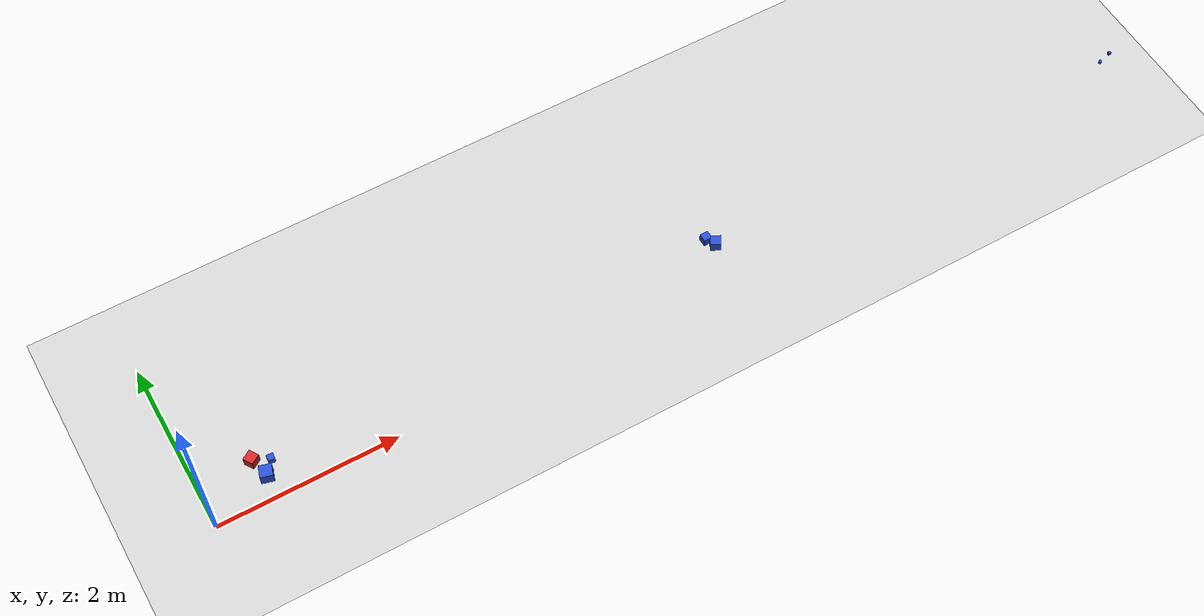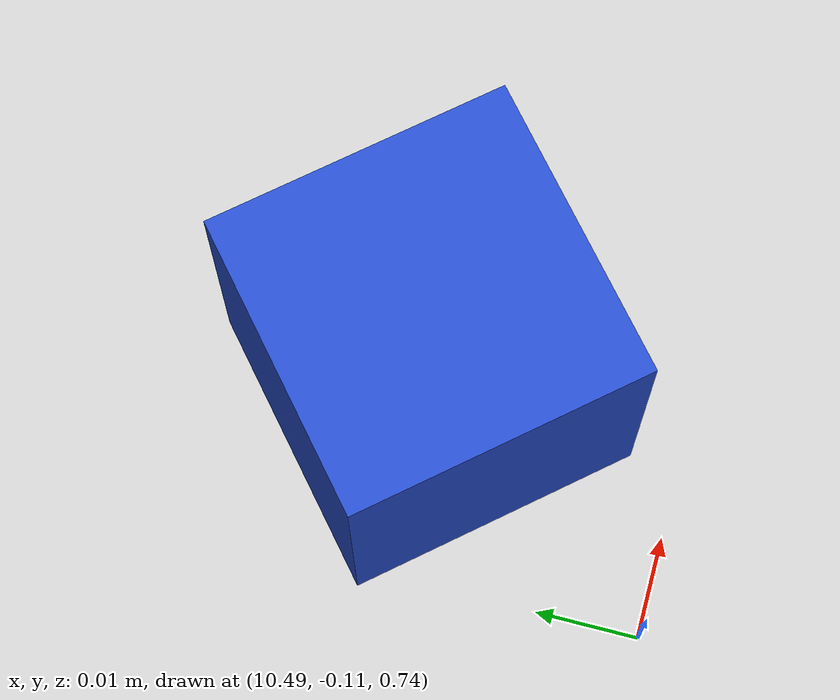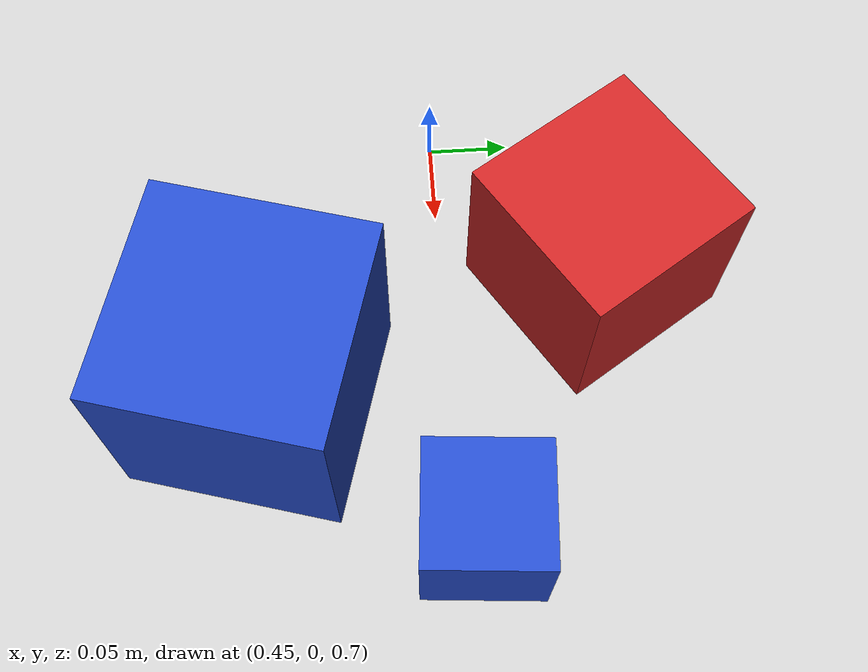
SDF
<sdf version="1.4">
 <world name="simple">
  <include><uri>model://ground_plane</uri></include>
  <include><uri>model://sun</uri></include>
  <include>
   <uri>model://red_cube11cm</uri>
   <name>block11</name>
   <pose>0.549441955169 0.0932563801525 0.75 0 0 -1.00279896272</pose>
  </include>
  <include>
   <uri>model://blue_cube13cm</uri>
   <name>block12</name>
   <pose>0.611181189757 -0.113820983791 0.75 0 0 2.85681969411</pose>
  </include>
  <include>
   <uri>model://blue_cube7cm</uri>
   <name>block14</name>
   <pose>0.714691488572 0.0106640996119 0.75 0 0 -0.0842057879604</pose>
  </include>
  <include>
   <uri>model://blue_cube9cm</uri>
   <name>block22</name>
   <pose>5.61388570679 0.0882168135634 0.75 0 0 -3.12034274693</pose>
  </include>
  <include>
   <uri>model://blue_cube11cm</uri>
   <name>block24</name>
   <pose>5.67076882126 -0.00669108082273 0.75 0 0 2.65890826572</pose>
  </include>
  <include>
   <uri>model://blue_cube3cm</uri>
   <name>block32</name>
   <pose>10.669106014 -0.0375210603285 0.75 0 0 -0.0270952688722</pose>
  </include>
  <include>
   <uri>model://blue_cube3cm</uri>
   <name>block34</name>
   <pose>10.5102902402 -0.084157720516 0.75 0 0 -0.863466240861</pose>
  </include>
 </world>
</sdf>

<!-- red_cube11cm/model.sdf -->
<sdf version='1.4'>
  <model name="red_cube11cm">
      <static>0</static>
      <link name='link'>
        <inertial>
          <mass>0.3</mass>
          <inertia>
            <ixx>0.001</ixx>
            <ixy>0.000000</ixy>
            <ixz>0.000000</ixz>
            <iyy>0.001</iyy>
            <iyz>0.000000</iyz>
            <izz>0.001</izz>
          </inertia>
        </inertial>
        <collision name='collision'>
          <geometry>
            <box>
              <size>0.110 0.110 0.110</size>
            </box>
          </geometry>
          <surface>
            <friction>
              <ode>
                <mu>5.0</mu>
                <mu2>5.0</mu2>
              </ode>
            </friction>
            <contact>
              <ode>
                <kp>1000000.0</kp>
                <kd>100.0</kd>
                <max_vel>1.0</max_vel>
                <min_depth>0.002</min_depth>
              </ode>
            </contact>
          </surface>
        </collision>
        <visual name='visual'>
          <geometry>
            <box>
              <size>0.110 0.110 0.110</size>
            </box>
          </geometry>
          <material>
            <script>
              <uri>file://media/materials/scripts/gazebo.material</uri>
              <name>Gazebo/Red</name>
            </script>
          </material>
        </visual>
        <velocity_decay>
          <linear>0.000000</linear>
          <angular>0.000000</angular>
        </velocity_decay>
        <self_collide>0</self_collide>
        <kinematic>0</kinematic>
        <gravity>1</gravity>
      </link>
  </model>
</sdf>

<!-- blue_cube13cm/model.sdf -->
<sdf version='1.4'>
  <model name="blue_cube13cm">
      <static>0</static>
      <link name='link'>
        <inertial>
          <mass>0.3</mass>
          <inertia>
            <ixx>0.001</ixx>
            <ixy>0.000000</ixy>
            <ixz>0.000000</ixz>
            <iyy>0.001</iyy>
            <iyz>0.000000</iyz>
            <izz>0.001</izz>
          </inertia>
        </inertial>
        <collision name='collision'>
          <geometry>
            <box>
              <size>0.130 0.130 0.130</size>
            </box>
          </geometry>
          <surface>
            <friction>
              <ode>
                <mu>5.0</mu>
                <mu2>5.0</mu2>
              </ode>
            </friction>
            <contact>
              <ode>
                <kp>1000000.0</kp>
                <kd>100.0</kd>
                <max_vel>1.0</max_vel>
                <min_depth>0.002</min_depth>
              </ode>
            </contact>
          </surface>
        </collision>
        <visual name='visual'>
          <geometry>
            <box>
              <size>0.130 0.130 0.130</size>
            </box>
          </geometry>
          <material>
            <script>
              <uri>file://media/materials/scripts/gazebo.material</uri>
              <name>Gazebo/Blue</name>
            </script>
          </material>
        </visual>
        <velocity_decay>
          <linear>0.000000</linear>
          <angular>0.000000</angular>
        </velocity_decay>
        <self_collide>0</self_collide>
        <kinematic>0</kinematic>
        <gravity>1</gravity>
      </link>
  </model>
</sdf>

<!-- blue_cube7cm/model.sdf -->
<sdf version='1.4'>
  <model name="blue_cube7cm">
      <static>0</static>
      <link name='link'>
        <inertial>
          <mass>0.3</mass>
          <inertia>
            <ixx>0.001</ixx>
            <ixy>0.000000</ixy>
            <ixz>0.000000</ixz>
            <iyy>0.001</iyy>
            <iyz>0.000000</iyz>
            <izz>0.001</izz>
          </inertia>
        </inertial>
        <collision name='collision'>
          <geometry>
            <box>
              <size>0.070 0.070 0.070</size>
            </box>
          </geometry>
          <surface>
            <friction>
              <ode>
                <mu>5.0</mu>
                <mu2>5.0</mu2>
              </ode>
            </friction>
            <contact>
              <ode>
                <kp>1000000.0</kp>
                <kd>100.0</kd>
                <max_vel>1.0</max_vel>
                <min_depth>0.002</min_depth>
              </ode>
            </contact>
          </surface>
        </collision>
        <visual name='visual'>
          <geometry>
            <box>
              <size>0.070 0.070 0.070</size>
            </box>
          </geometry>
          <material>
            <script>
              <uri>file://media/materials/scripts/gazebo.material</uri>
              <name>Gazebo/Blue</name>
            </script>
          </material>
        </visual>
        <velocity_decay>
          <linear>0.000000</linear>
          <angular>0.000000</angular>
        </velocity_decay>
        <self_collide>0</self_collide>
        <kinematic>0</kinematic>
        <gravity>1</gravity>
      </link>
  </model>
</sdf>

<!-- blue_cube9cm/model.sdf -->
<sdf version='1.4'>
  <model name="blue_cube9cm">
      <static>0</static>
      <link name='link'>
        <inertial>
          <mass>0.3</mass>
          <inertia>
            <ixx>0.001</ixx>
            <ixy>0.000000</ixy>
            <ixz>0.000000</ixz>
            <iyy>0.001</iyy>
            <iyz>0.000000</iyz>
            <izz>0.001</izz>
          </inertia>
        </inertial>
        <collision name='collision'>
          <geometry>
            <box>
              <size>0.090 0.090 0.090</size>
            </box>
          </geometry>
          <surface>
            <friction>
              <ode>
                <mu>5.0</mu>
                <mu2>5.0</mu2>
              </ode>
            </friction>
            <contact>
              <ode>
                <kp>1000000.0</kp>
                <kd>100.0</kd>
                <max_vel>1.0</max_vel>
                <min_depth>0.002</min_depth>
              </ode>
            </contact>
          </surface>
        </collision>
        <visual name='visual'>
          <geometry>
            <box>
              <size>0.090 0.090 0.090</size>
            </box>
          </geometry>
          <material>
            <script>
              <uri>file://media/materials/scripts/gazebo.material</uri>
              <name>Gazebo/Blue</name>
            </script>
          </material>
        </visual>
        <velocity_decay>
          <linear>0.000000</linear>
          <angular>0.000000</angular>
        </velocity_decay>
        <self_collide>0</self_collide>
        <kinematic>0</kinematic>
        <gravity>1</gravity>
      </link>
  </model>
</sdf>

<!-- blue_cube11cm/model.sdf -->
<sdf version='1.4'>
  <model name="blue_cube11cm">
      <static>0</static>
      <link name='link'>
        <inertial>
          <mass>0.3</mass>
          <inertia>
            <ixx>0.001</ixx>
            <ixy>0.000000</ixy>
            <ixz>0.000000</ixz>
            <iyy>0.001</iyy>
            <iyz>0.000000</iyz>
            <izz>0.001</izz>
          </inertia>
        </inertial>
        <collision name='collision'>
          <geometry>
            <box>
              <size>0.110 0.110 0.110</size>
            </box>
          </geometry>
          <surface>
            <friction>
              <ode>
                <mu>5.0</mu>
                <mu2>5.0</mu2>
              </ode>
            </friction>
            <contact>
              <ode>
                <kp>1000000.0</kp>
                <kd>100.0</kd>
                <max_vel>1.0</max_vel>
                <min_depth>0.002</min_depth>
              </ode>
            </contact>
          </surface>
        </collision>
        <visual name='visual'>
          <geometry>
            <box>
              <size>0.110 0.110 0.110</size>
            </box>
          </geometry>
          <material>
            <script>
              <uri>file://media/materials/scripts/gazebo.material</uri>
              <name>Gazebo/Blue</name>
            </script>
          </material>
        </visual>
        <velocity_decay>
          <linear>0.000000</linear>
          <angular>0.000000</angular>
        </velocity_decay>
        <self_collide>0</self_collide>
        <kinematic>0</kinematic>
        <gravity>1</gravity>
      </link>
  </model>
</sdf>

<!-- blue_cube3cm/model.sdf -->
<sdf version='1.4'>
  <model name="blue_cube3cm">
      <static>0</static>
      <link name='link'>
        <inertial>
          <mass>0.3</mass>
          <inertia>
            <ixx>0.001</ixx>
            <ixy>0.000000</ixy>
            <ixz>0.000000</ixz>
            <iyy>0.001</iyy>
            <iyz>0.000000</iyz>
            <izz>0.001</izz>
          </inertia>
        </inertial>
        <collision name='collision'>
          <geometry>
            <box>
              <size>0.030 0.030 0.030</size>
            </box>
          </geometry>
          <surface>
            <friction>
              <ode>
                <mu>5.0</mu>
                <mu2>5.0</mu2>
              </ode>
            </friction>
            <contact>
              <ode>
                <kp>1000000.0</kp>
                <kd>100.0</kd>
                <max_vel>1.0</max_vel>
                <min_depth>0.002</min_depth>
              </ode>
            </contact>
          </surface>
        </collision>
        <visual name='visual'>
          <geometry>
            <box>
              <size>0.030 0.030 0.030</size>
            </box>
          </geometry>
          <material>
            <script>
              <uri>file://media/materials/scripts/gazebo.material</uri>
              <name>Gazebo/Blue</name>
            </script>
          </material>
        </visual>
        <velocity_decay>
          <linear>0.000000</linear>
          <angular>0.000000</angular>
        </velocity_decay>
        <self_collide>0</self_collide>
        <kinematic>0</kinematic>
        <gravity>1</gravity>
      </link>
  </model>
</sdf>
